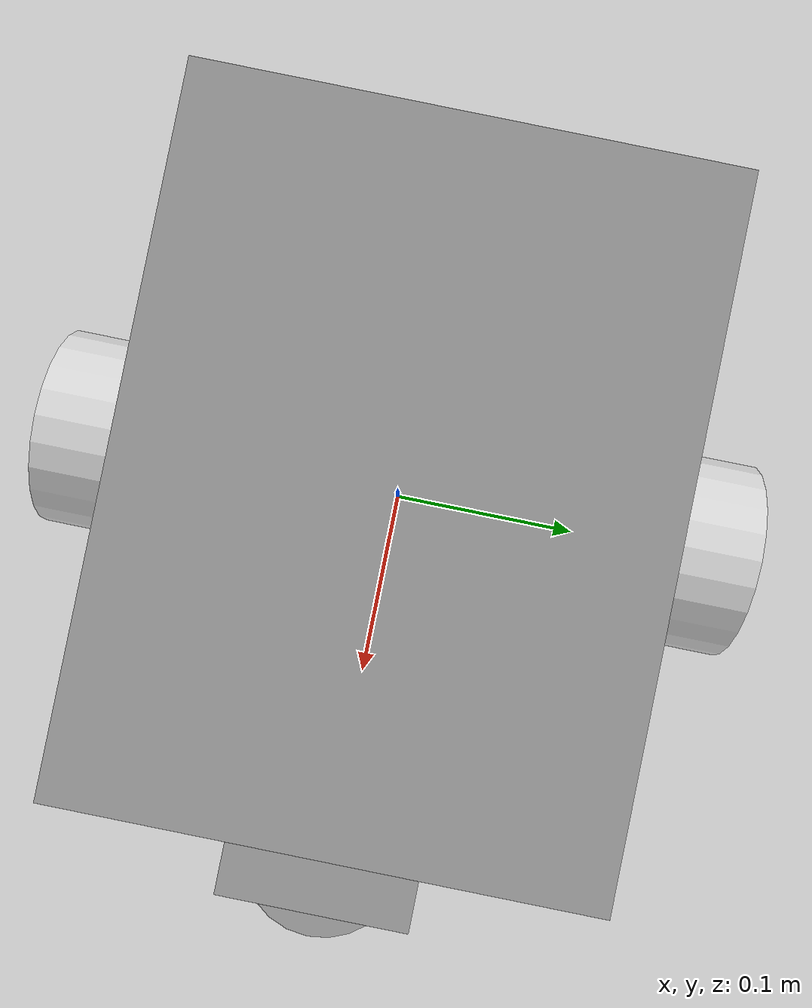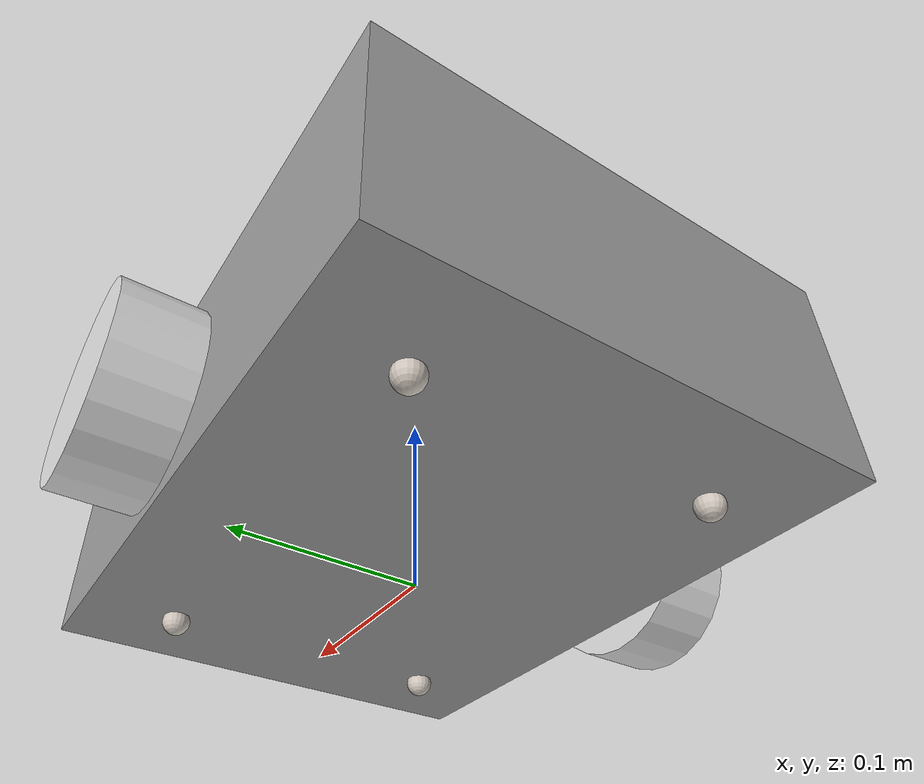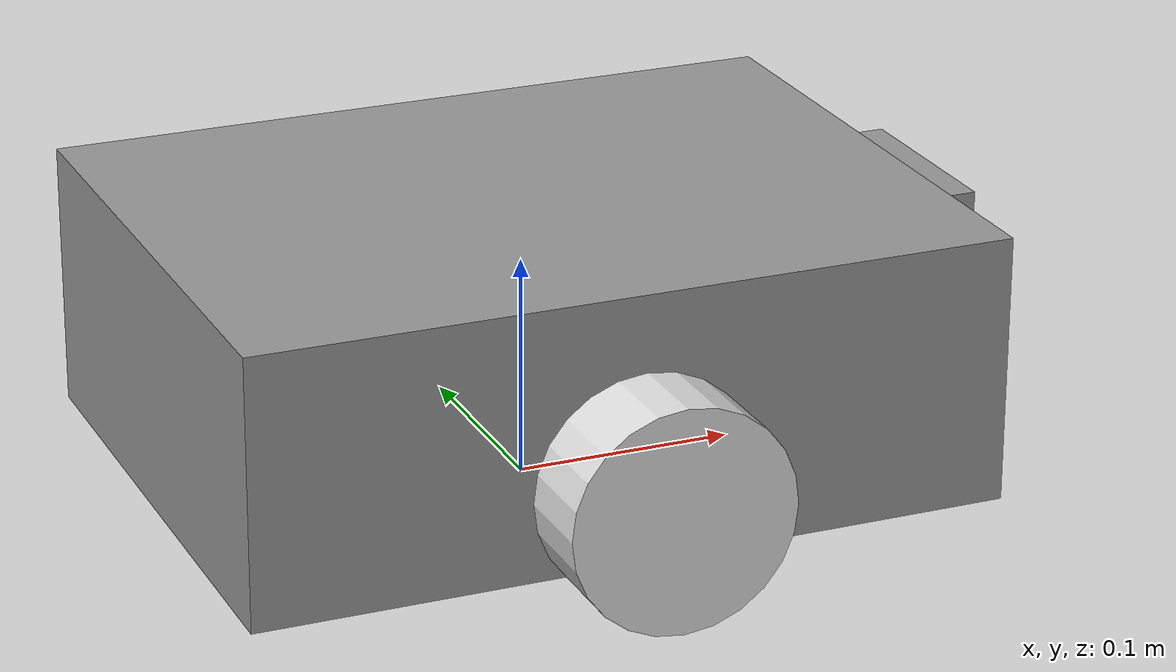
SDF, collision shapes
<?xml version="1.0" ?>
<sdf version="1.8">

    <model name='neobot'>

    <!-- ********************* PLUGINS ********************* -->

        <plugin filename="gz-sim-imu-system"
                name="gz::sim::systems::Imu">
        </plugin>

        <plugin filename="gz-sim-sensors-system"
                name="gz::sim::systems::Sensors">
            <render_engine>ogre2</render_engine>
        </plugin>

        <plugin filename="gz-sim-diff-drive-system"
            name="gz::sim::systems::DiffDrive">
            <left_joint>left_wheel_joint</left_joint>
            <right_joint>right_wheel_joint</right_joint>
            <!-- wheel_separation: Distance b/w outer surfaces of the wheel -->
            <wheel_separation>0.352</wheel_separation>
            <wheel_radius>0.05</wheel_radius>
            <odom_publish_frequency>30</odom_publish_frequency>
            <min_linear_velocity>-0.314</min_linear_velocity>
            <max_linear_velocity>0.314</max_linear_velocity>
            <min_angular_velocity>-0.4</min_angular_velocity>
            <max_angular_velocity>0.4</max_angular_velocity>
            <topic>/cmd_vel</topic>
            <odom_topic>odom_encoders</odom_topic>
            <tf_topic>tf</tf_topic>
            <frame_id>odom</frame_id>
            <child_frame_id>base_footprint</child_frame_id>
        </plugin>

        <plugin filename="libgz-sim-odometry-publisher-system"
            name="gz::sim::systems::OdometryPublisher">
            <odom_frame>odom</odom_frame>
            <robot_base_frame>base_footprint</robot_base_frame>
            <odom_topic>odom</odom_topic>
            <tf_topic>tf_true</tf_topic>
            <dimensions>2</dimensions>
            <frame_id>odom</frame_id>
            <child_frame_id>base_footprint</child_frame_id>
            <odom_publish_frequency>10</odom_publish_frequency>
        </plugin>

        <plugin filename="gz-sim-joint-state-publisher-system"
            name="gz::sim::systems::JointStatePublisher">
            <joint_name>left_wheel_joint</joint_name>
            <joint_name>right_wheel_joint</joint_name>
            <topic>/joint_states</topic>
        </plugin>

    <!-- ********************* LINKS ********************* -->

        <link name="base_footprint">
        </link>

        <link name='base_link'>
            <pose relative_to='base_footprint_joint'>0 0 0 0 0 0</pose>
            <inertial>
                <pose>0.019736266638338499 -0.00103592208239938 0.024943774276299499 0 0 0</pose>
                <mass>2.8860000000000001</mass>
                <inertia>
                <ixx>0.0230886</ixx>
                <ixy>-0.00059632880</ixy>
                <ixz>0.00089059654</ixz>
                <iyy>0.040993868</iyy>
                <iyz>-0.00001729413</iyz>
                <izz>0.056762850</izz>
                </inertia>
            </inertial>
            <collision name='base_link_collision_frame'>
                <pose>0 0 0.037 0 0 0</pose>
                <geometry>
                    <box>
                        <size>0.34 0.26 0.120</size>
                    </box>
                </geometry>
            </collision>
            <collision name='base_link_collision_lidar'>
                <pose>0.18 0 0.026 0 0 0</pose>
                <geometry>
                    <cylinder>
                        <length>0.0526</length>
                        <radius>0.04</radius>
                    </cylinder>
                </geometry>
            </collision>
            <collision name='base_link_collision_camera'>
                <pose>0.184025 0 0.072 0 0 0</pose>
                <geometry>
                    <box>
                        <size>0.02805 0.09 0.025</size>
                    </box>
                </geometry>
            </collision>
            <visual name='base_link_visual'>
                <pose>0 0 0 0 0 0</pose>
                <geometry>
                <mesh>
                    <scale>1 1 1</scale>
                    <uri>../meshes/base_link.STL</uri>
                </mesh>
                </geometry>
                <material>
                <script>
                    <name>Gazebo/Grey</name>
                    <uri>file://media/materials/scripts/gazebo.material</uri>
                </script>
                </material>
            </visual>
        </link>

        <link name='camera_link'>
            <pose relative_to='camera_joint'>0 0 0 0 0 0</pose>

            <sensor name="camera_link" type="rgbd_camera">
                <update_rate>30</update_rate>
                <topic>camera_link</topic>
                <gz_frame_id>camera_link</gz_frame_id>
                <camera name="camera_link">

                <horizontal_fov>1.0472</horizontal_fov>
                <lens>
                    <intrinsics>
                    <!-- fx = fy = width / ( 2 * tan (hfov / 2 ) ) -->
                    <fx>554.25469</fx>
                    <fy>554.25469</fy>
                    <!-- cx = ( width + 1 ) / 2 -->
                    <cx>320.5</cx>
                    <!-- cy = ( height + 1 ) / 2 -->
                    <cy>240.5</cy>
                    <s>0</s>
                    </intrinsics>
                </lens>
                <distortion>
                    <k1>0.0</k1>
                    <k2>0.0</k2>
                    <k3>0.0</k3>
                    <p1>0.0</p1>
                    <p2>0.0</p2>
                    <center>0.5 0.5</center>
                </distortion>
                <image>
                    <width>640</width>
                    <height>480</height>
                    <format>R8G8B8</format>
                </image>
                <clip>
                    <near>0.01</near>
                    <far>300</far>
                </clip>
                <depth_camera>
                    <clip>
                    <near>0.1</near>
                    <far>10</far>
                    </clip>
                </depth_camera>
                <noise>
                    <type>gaussian</type>
                    <mean>0</mean>
                    <stddev>0.007</stddev>
                </noise>
                </camera>
            </sensor>

        </link>

        <link name='imu_link'>
            <pose relative_to='imu_joint'>0 0 0 0 0 0</pose>

            <sensor name="imu_sensor" type="imu">
                <gz_frame_id>imu</gz_frame_id>
                <always_on>1</always_on>
                <update_rate>1</update_rate>
                <visualize>true</visualize>
                <topic>imu</topic>
            </sensor>

        </link>

        <link name='lidar_link'>
            <pose relative_to='lidar_joint'>0 0 0 0 0 0</pose>

            <sensor name='gpu_lidar' type='gpu_lidar'>

                <topic>scan</topic>
                <gz_frame_id>lidar_link</gz_frame_id>
                <update_rate>10</update_rate>
                <ray>
                    <scan>
                        <horizontal>
                            <samples>180</samples>
                            <resolution>1</resolution>
                            <min_angle>-1.57</min_angle>
                            <max_angle>1.57</max_angle>
                        </horizontal>
                        <vertical>
                            <samples>1</samples>
                            <resolution>0.01</resolution>
                            <min_angle>0</min_angle>
                            <max_angle>0</max_angle>
                        </vertical>
                    </scan>
                    <range>
                        <min>0.08</min>
                        <max>8.0</max>
                        <resolution>0.01</resolution>
                    </range>
                </ray>
                <always_on>1</always_on>
                <visualize>true</visualize>
            </sensor>

        </link>

        <link name='left_wheel_link'>
            <pose relative_to='left_wheel_joint'>0 0 0 0 0 0</pose>
            <inertial>
                <pose>0 0.015369 0 0 0 0</pose>
                <mass>0.132</mass>
                <inertia>
                <ixx>0.000103824895</ixx>
                <ixy>0</ixy>
                <ixz>0</ixz>
                <iyy>0.000183869513</iyy>
                <iyz>0</iyz>
                <izz>0.000103824895</izz>
                </inertia>
            </inertial>
            <collision name='left_wheel_link_collision'>
                <pose>0 0.02 0 1.57079632679 0 0</pose>
                <geometry>
                    <cylinder>
                        <length>0.04</length>
                        <radius>0.05</radius>
                    </cylinder>
                </geometry>
                <surface>
                    <friction>
                    <ode>
                        <mu>5.00</mu>
                        <mu2>5.00</mu2>
                        <slip1>0</slip1>
                        <slip2>0</slip2>
                    </ode>
                    </friction>
                </surface>
            </collision>
            <visual name='left_wheel_link_visual'>
                <pose>0 0 0 0 0 0</pose>
                <geometry>
                <mesh>
                    <scale>1 1 1</scale>
                    <uri>../meshes/left_wheel_link.STL</uri>
                </mesh>
                </geometry>
                <material>
                <diffuse>0.872550011 0.872550011 0.872550011 1</diffuse>
                <ambient>0.872550011 0.872550011 0.872550011 1</ambient>
                </material>
            </visual>
        </link>

        <link name='right_wheel_link'>
            <pose relative_to='right_wheel_joint'>0 0 0 0 0 0</pose>
            <inertial>
                <pose>0 -0.015369 0 0 0 0</pose>
                <mass>0.132</mass>
                <inertia>
                <ixx>0.000103824895</ixx>
                <ixy>0</ixy>
                <ixz>0</ixz>
                <iyy>0.000183869513</iyy>
                <iyz>0</iyz>
                <izz>0.000103824895</izz>
                </inertia>
            </inertial>
            <collision name='right_wheel_link_collision'>
                <pose>0 -0.02 0 1.57079632679 0 0</pose>
                <geometry>
                    <cylinder>
                        <length>0.04</length>
                        <radius>0.05</radius>
                    </cylinder>
                </geometry>
                <surface>
                    <friction>
                    <ode>
                        <mu>5.00</mu>
                        <mu2>5.00</mu2>
                        <slip1>0</slip1>
                        <slip2>0</slip2>
                    </ode>
                    </friction>
                </surface>
            </collision>
            <visual name='right_wheel_link_visual'>
                <pose>0 0 0 0 0 0</pose>
                <geometry>
                <mesh>
                    <scale>1 1 1</scale>
                    <uri>../meshes/right_wheel_link.STL</uri>
                </mesh>
                </geometry>
                <material>
                <diffuse>0.872550011 0.872550011 0.872550011 1</diffuse>
                <ambient>0.872550011 0.872550011 0.872550011 1</ambient>
                </material>
            </visual>
        </link>

        <link name='front_left_castor_link'>
            <pose relative_to='front_left_castor_joint'/>
            <inertial>
                <pose>0 0 0 0 0 0</pose>
                <mass>0.0138</mass>
                <inertia>
                <ixx>0.000000312122139</ixx>
                <ixy>0</ixy>
                <ixz>0</ixz>
                <iyy>0.000000312122139</iyy>
                <iyz>0</iyz>
                <izz>0.000000312122139</izz>
                </inertia>
            </inertial>
            <collision name='front_left_castor_link_collision'>
                <pose>0 0 0 0 0 0</pose>
                <geometry>
                <sphere>
                    <radius>0.0075</radius>
                </sphere>
                </geometry>
                <surface>
                    <friction>
                    <ode>
                        <mu>0.00</mu>
                        <mu2>0.00</mu2>
                    </ode>
                    </friction>
                </surface>
            </collision>
            <visual name='front_left_castor_link_visual'>
                <pose>0 0 0 0 0 0</pose>
                <geometry>
                <mesh>
                    <scale>1 1 1</scale>
                    <uri>../meshes/front_castor_link.STL</uri>
                </mesh>
                </geometry>
                <material>
                <diffuse>0.808824956 0.774512529 0.735300064 1</diffuse>
                <ambient>0.808824956 0.774512529 0.735300064 1</ambient>
                </material>
            </visual>
        </link>

        <link name='front_right_castor_link'>
            <pose relative_to='front_right_castor_joint'/>
            <inertial>
                <pose>0 0 0 0 0 0</pose>
                <mass>0.0138</mass>
                <inertia>
                <ixx>0.000000312122139</ixx>
                <ixy>0</ixy>
                <ixz>0</ixz>
                <iyy>0.000000312122139</iyy>
                <iyz>0</iyz>
                <izz>0.000000312122139</izz>
                </inertia>
            </inertial>
            <collision name='front_right_castor_link_collision'>
                <pose>0 0 0 0 0 0</pose>
                <geometry>
                <sphere>
                    <radius>0.0075</radius>
                </sphere>
                </geometry>
                <surface>
                    <friction>
                    <ode>
                        <mu>0.00</mu>
                        <mu2>0.00</mu2>
                    </ode>
                    </friction>
                </surface>
            </collision>
            <visual name='front_right_castor_link_visual'>
                <pose>0 0 0 0 0 0</pose>
                <geometry>
                <mesh>
                    <scale>1 1 1</scale>
                    <uri>../meshes/front_castor_link.STL</uri>
                </mesh>
                </geometry>
                <material>
                <diffuse>0.808824956 0.774512529 0.735300064 1</diffuse>
                <ambient>0.808824956 0.774512529 0.735300064 1</ambient>
                </material>
            </visual>
        </link>

        <link name='rear_left_castor_link'>
            <pose relative_to='rear_left_castor_joint'/>
            <inertial>
                <pose>0 0 0 0 0 0</pose>
                <mass>0.0138</mass>
                <inertia>
                <ixx>0.000000312122139</ixx>
                <ixy>0</ixy>
                <ixz>0</ixz>
                <iyy>0.000000312122139</iyy>
                <iyz>0</iyz>
                <izz>0.000000312122139</izz>
                </inertia>
            </inertial>
            <collision name='rear_left_castor_link_collision'>
                <pose>0 0 0 0 0 0</pose>
                <geometry>
                <sphere>
                    <radius>0.0075</radius>
                </sphere>
                </geometry>
                <surface>
                    <friction>
                    <ode>
                        <mu>0.00</mu>
                        <mu2>0.00</mu2>
                    </ode>
                    </friction>
                </surface>
            </collision>
            <visual name='rear_left_castor_link_visual'>
                <pose>0 0 0 0 0 0</pose>
                <geometry>
                <mesh>
                    <scale>1 1 1</scale>
                    <uri>../meshes/rear_castor_link.STL</uri>
                </mesh>
                </geometry>
                <material>
                <diffuse>0.808824956 0.774512529 0.735300064 1</diffuse>
                <ambient>0.808824956 0.774512529 0.735300064 1</ambient>
                </material>
            </visual>
        </link>

        <link name='rear_right_castor_link'>
            <pose relative_to='rear_right_castor_joint'/>
            <inertial>
                <pose>0 0 0 0 0 0</pose>
                <mass>0.0138</mass>
                <inertia>
                <ixx>0.000000312122139</ixx>
                <ixy>0</ixy>
                <ixz>0</ixz>
                <iyy>0.000000312122139</iyy>
                <iyz>0</iyz>
                <izz>0.000000312122139</izz>
                </inertia>
            </inertial>
            <collision name='rear_right_castor_link_collision'>
                <pose>0 0 0 0 0 0</pose>
                <geometry>
                <sphere>
                    <radius>0.0075</radius>
                </sphere>
                </geometry>
                <surface>
                    <friction>
                    <ode>
                        <mu>0.00</mu>
                        <mu2>0.00</mu2>
                    </ode>
                    </friction>
                </surface>
            </collision>
            <visual name='rear_right_castor_link_visual'>
                <pose>0 0 0 0 0 0</pose>
                <geometry>
                <mesh>
                    <scale>1 1 1</scale>
                    <uri>../meshes/rear_castor_link.STL</uri>
                </mesh>
                </geometry>
                <material>
                <diffuse>0.808824956 0.774512529 0.735300064 1</diffuse>
                <ambient>0.808824956 0.774512529 0.735300064 1</ambient>
                </material>
            </visual>
        </link>

    <!-- ********************* JOINTS ********************* -->

        <joint name='base_footprint_joint' type='fixed'>
            <pose relative_to='base_footprint'>0 0 0.0345 0 0 0</pose>
                <parent>base_footprint</parent>
                <child>base_link</child>
        </joint>

        <joint name='camera_joint' type='fixed'>
            <pose relative_to='base_link'>0.19905 0 0.072 0 0 0</pose>
                <parent>base_link</parent>
                <child>camera_link</child>
        </joint>

        <joint name='lidar_joint' type='fixed'>
            <pose relative_to='base_link'>0.18 0 0.0376 0 0 0</pose>
                <parent>base_link</parent>
                <child>lidar_link</child>
        </joint>

        <joint name='imu_joint' type='fixed'>
            <pose relative_to='base_link'>0 0 0 0 0 0</pose>
                <parent>base_link</parent>
                <child>imu_link</child>
        </joint>

        <joint name='left_wheel_joint' type='revolute'>
            <pose relative_to='base_link'>0 0.136 0.0155 0 0 0</pose>
                <parent>base_link</parent>
                <child>left_wheel_link</child>
                    <axis>
                        <xyz>0 1 0</xyz>
                        <limit>
                        <lower>-inf</lower>
                        <upper>inf</upper>
                        </limit>

                    </axis>
        </joint>

        <joint name='right_wheel_joint' type='revolute'>
            <pose relative_to='base_link'>0 -0.136 0.0155 0 0 0</pose>
                <parent>base_link</parent>
                <child>right_wheel_link</child>
                    <axis>
                        <xyz>0 1 0</xyz>
                        <limit>
                            <!-- 9.11 rad/s joint_velocity ~= 87rpm -->
                            <lower>-inf</lower>
                            <upper>inf</upper>
                        </limit>
                    </axis>
        </joint>

        <joint name='front_left_castor_joint' type='fixed'>
            <pose relative_to='base_link'>0.12 0.08 -0.0255 0 0 0</pose>
                <parent>base_link</parent>
                <child>front_left_castor_link</child>
        </joint>

        <joint name='front_right_castor_joint' type='fixed'>
            <pose relative_to='base_link'>0.12 -0.08 -0.0255 0 0 0</pose>
                <parent>base_link</parent>
                <child>front_right_castor_link</child>
        </joint>

        <joint name='rear_left_castor_joint' type='fixed'>
            <pose relative_to='base_link'>-0.12 0.08 -0.0255 0 0 0</pose>
                <parent>base_link</parent>
                <child>rear_left_castor_link</child>
        </joint>

        <joint name='rear_right_castor_joint' type='fixed'>
            <pose relative_to='base_link'>-0.12 -0.08 -0.0255 0 0 0</pose>
                <parent>base_link</parent>
                <child>rear_right_castor_link</child>
        </joint>

    </model>

</sdf>
